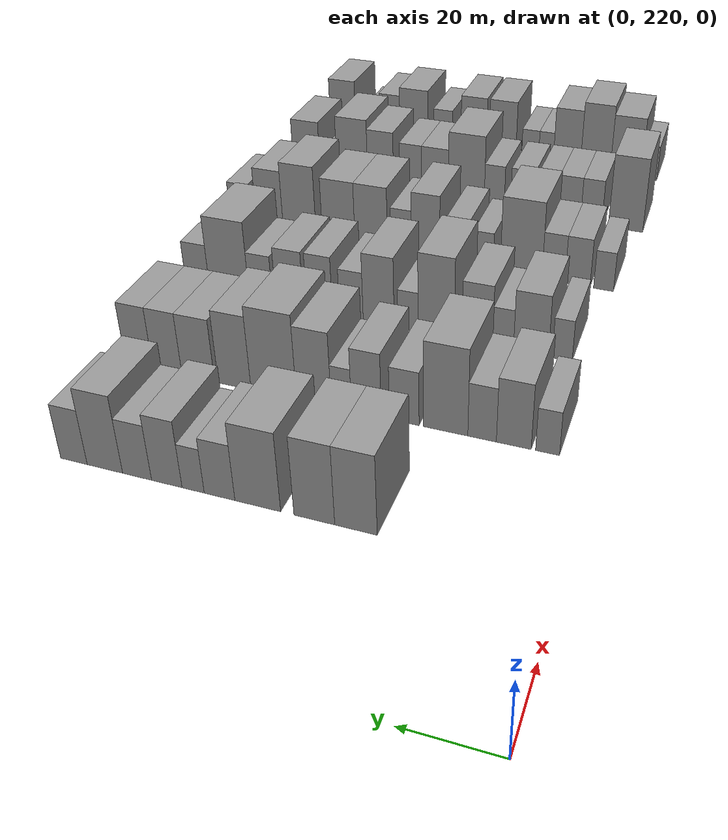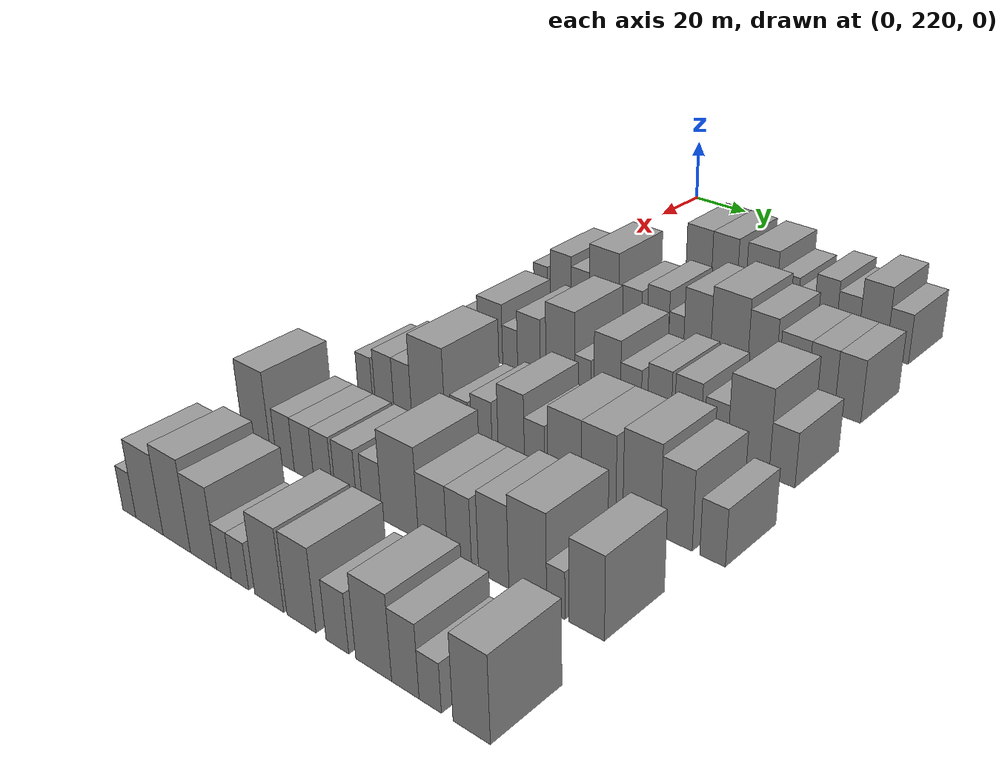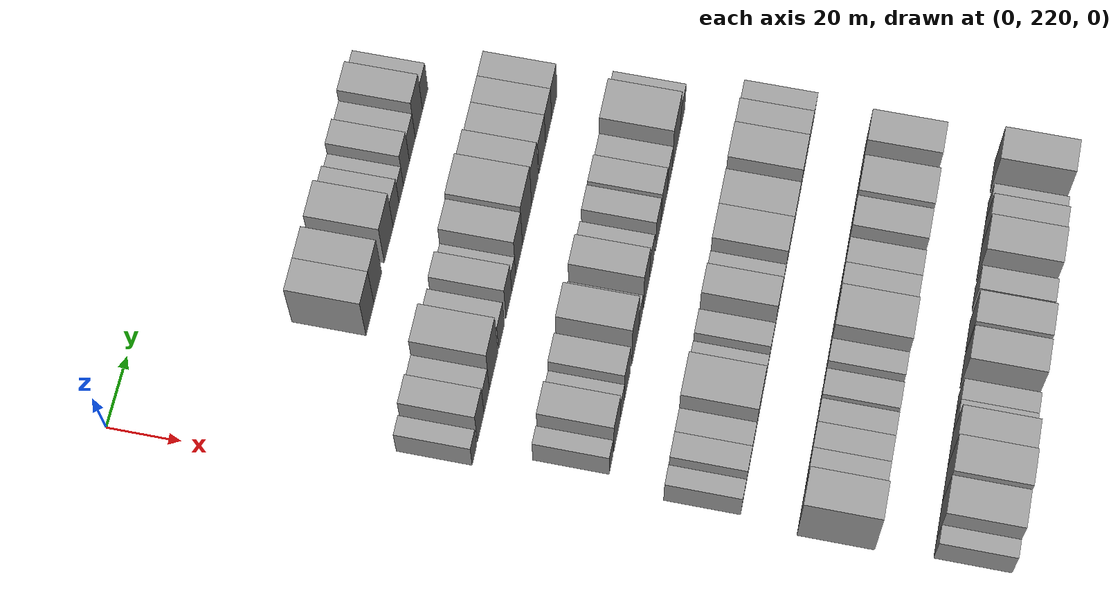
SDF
<sdf version="1.6">
 <world name="default">
  <model name="building_86">
   <static>1</static>
   <pose>50.0000 262.5897 0 0.000000 0.000000 0.000000</pose>
   <link name="link">
    <pose>0 0 10.50 0 0 0</pose>
    <collision name="collision"><geometry><box><size>20.0000 9.2409 21.0000</size></box></geometry></collision>
    <visual name="visual">
     <cast_shadows>0</cast_shadows>
     <geometry><box><size>20.0000 9.2409 21.0000</size></box></geometry>
     <material>
      <script>
       <uri>model://grey_wall/materials/scripts</uri>
       <uri>model://grey_wall/materials/textures</uri>
       <name>vrc/grey_wall</name>
      </script>
     </material>
    </visual>
   </link>
  </model>
  <model name="building_87">
   <static>1</static>
   <pose>50.0000 271.7414 0 0.000000 0.000000 0.000000</pose>
   <link name="link">
    <pose>0 0 10.50 0 0 0</pose>
    <collision name="collision"><geometry><box><size>20.0000 9.0625 21.0000</size></box></geometry></collision>
    <visual name="visual">
     <cast_shadows>0</cast_shadows>
     <geometry><box><size>20.0000 9.0625 21.0000</size></box></geometry>
     <material>
      <script>
       <uri>model://grey_wall/materials/scripts</uri>
       <uri>model://grey_wall/materials/textures</uri>
       <name>vrc/grey_wall</name>
      </script>
     </material>
    </visual>
   </link>
  </model>
  <model name="building_88">
   <static>1</static>
   <pose>50.0000 284.5106 0 0.000000 0.000000 0.000000</pose>
   <link name="link">
    <pose>0 0 10.50 0 0 0</pose>
    <collision name="collision"><geometry><box><size>20.0000 10.4759 21.0000</size></box></geometry></collision>
    <visual name="visual">
     <cast_shadows>0</cast_shadows>
     <geometry><box><size>20.0000 10.4759 21.0000</size></box></geometry>
     <material>
      <script>
       <uri>model://grey_wall/materials/scripts</uri>
       <uri>model://grey_wall/materials/textures</uri>
       <name>vrc/grey_wall</name>
      </script>
     </material>
    </visual>
   </link>
  </model>
  <model name="building_89">
   <static>1</static>
   <pose>50.0000 293.3329 0 0.000000 0.000000 0.000000</pose>
   <link name="link">
    <pose>0 0 7.50 0 0 0</pose>
    <collision name="collision"><geometry><box><size>20.0000 7.1687 15.0000</size></box></geometry></collision>
    <visual name="visual">
     <cast_shadows>0</cast_shadows>
     <geometry><box><size>20.0000 7.1687 15.0000</size></box></geometry>
     <material>
      <script>
       <uri>model://grey_wall/materials/scripts</uri>
       <uri>model://grey_wall/materials/textures</uri>
       <name>vrc/grey_wall</name>
      </script>
     </material>
    </visual>
   </link>
  </model>
  <model name="building_90">
   <static>1</static>
   <pose>50.0000 299.5452 0 0.000000 0.000000 0.000000</pose>
   <link name="link">
    <pose>0 0 6.00 0 0 0</pose>
    <collision name="collision"><geometry><box><size>20.0000 5.2559 12.0000</size></box></geometry></collision>
    <visual name="visual">
     <cast_shadows>0</cast_shadows>
     <geometry><box><size>20.0000 5.2559 12.0000</size></box></geometry>
     <material>
      <script>
       <uri>model://grey_wall/materials/scripts</uri>
       <uri>model://grey_wall/materials/textures</uri>
       <name>vrc/grey_wall</name>
      </script>
     </material>
    </visual>
   </link>
  </model>
  <model name="building_91">
   <static>1</static>
   <pose>50.0000 305.8410 0 0.000000 0.000000 0.000000</pose>
   <link name="link">
    <pose>0 0 9.00 0 0 0</pose>
    <collision name="collision"><geometry><box><size>20.0000 7.3357 18.0000</size></box></geometry></collision>
    <visual name="visual">
     <cast_shadows>0</cast_shadows>
     <geometry><box><size>20.0000 7.3357 18.0000</size></box></geometry>
     <material>
      <script>
       <uri>model://grey_wall/materials/scripts</uri>
       <uri>model://grey_wall/materials/textures</uri>
       <name>vrc/grey_wall</name>
      </script>
     </material>
    </visual>
   </link>
  </model>
  <model name="building_92">
   <static>1</static>
   <pose>50.0000 313.0555 0 0.000000 0.000000 0.000000</pose>
   <link name="link">
    <pose>0 0 7.50 0 0 0</pose>
    <collision name="collision"><geometry><box><size>20.0000 7.0933 15.0000</size></box></geometry></collision>
    <visual name="visual">
     <cast_shadows>0</cast_shadows>
     <geometry><box><size>20.0000 7.0933 15.0000</size></box></geometry>
     <material>
      <script>
       <uri>model://grey_wall/materials/scripts</uri>
       <uri>model://grey_wall/materials/textures</uri>
       <name>vrc/grey_wall</name>
      </script>
     </material>
    </visual>
   </link>
  </model>
  <model name="building_93">
   <static>1</static>
   <pose>50.0000 321.0074 0 0.000000 0.000000 0.000000</pose>
   <link name="link">
    <pose>0 0 10.50 0 0 0</pose>
    <collision name="collision"><geometry><box><size>20.0000 8.8105 21.0000</size></box></geometry></collision>
    <visual name="visual">
     <cast_shadows>0</cast_shadows>
     <geometry><box><size>20.0000 8.8105 21.0000</size></box></geometry>
     <material>
      <script>
       <uri>model://grey_wall/materials/scripts</uri>
       <uri>model://grey_wall/materials/textures</uri>
       <name>vrc/grey_wall</name>
      </script>
     </material>
    </visual>
   </link>
  </model>
  <model name="building_94">
   <static>1</static>
   <pose>50.0000 328.7657 0 0.000000 0.000000 0.000000</pose>
   <link name="link">
    <pose>0 0 7.50 0 0 0</pose>
    <collision name="collision"><geometry><box><size>20.0000 6.7059 15.0000</size></box></geometry></collision>
    <visual name="visual">
     <cast_shadows>0</cast_shadows>
     <geometry><box><size>20.0000 6.7059 15.0000</size></box></geometry>
     <material>
      <script>
       <uri>model://grey_wall/materials/scripts</uri>
       <uri>model://grey_wall/materials/textures</uri>
       <name>vrc/grey_wall</name>
      </script>
     </material>
    </visual>
   </link>
  </model>
  <model name="building_206">
   <static>1</static>
   <pose>85.0000 230.8549 0 0.000000 0.000000 0.000000</pose>
   <link name="link">
    <pose>0 0 6.00 0 0 0</pose>
    <collision name="collision"><geometry><box><size>20.0000 5.4168 12.0000</size></box></geometry></collision>
    <visual name="visual">
     <cast_shadows>0</cast_shadows>
     <geometry><box><size>20.0000 5.4168 12.0000</size></box></geometry>
     <material>
      <script>
       <uri>model://grey_wall/materials/scripts</uri>
       <uri>model://grey_wall/materials/textures</uri>
       <name>vrc/grey_wall</name>
      </script>
     </material>
    </visual>
   </link>
  </model>
  <model name="building_207">
   <static>1</static>
   <pose>85.0000 238.5603 0 0.000000 0.000000 0.000000</pose>
   <link name="link">
    <pose>0 0 9.00 0 0 0</pose>
    <collision name="collision"><geometry><box><size>20.0000 7.9939 18.0000</size></box></geometry></collision>
    <visual name="visual">
     <cast_shadows>0</cast_shadows>
     <geometry><box><size>20.0000 7.9939 18.0000</size></box></geometry>
     <material>
      <script>
       <uri>model://grey_wall/materials/scripts</uri>
       <uri>model://grey_wall/materials/textures</uri>
       <name>vrc/grey_wall</name>
      </script>
     </material>
    </visual>
   </link>
  </model>
  <model name="building_208">
   <static>1</static>
   <pose>85.0000 245.8861 0 0.000000 0.000000 0.000000</pose>
   <link name="link">
    <pose>0 0 7.50 0 0 0</pose>
    <collision name="collision"><geometry><box><size>20.0000 6.6578 15.0000</size></box></geometry></collision>
    <visual name="visual">
     <cast_shadows>0</cast_shadows>
     <geometry><box><size>20.0000 6.6578 15.0000</size></box></geometry>
     <material>
      <script>
       <uri>model://grey_wall/materials/scripts</uri>
       <uri>model://grey_wall/materials/textures</uri>
       <name>vrc/grey_wall</name>
      </script>
     </material>
    </visual>
   </link>
  </model>
  <model name="building_209">
   <static>1</static>
   <pose>85.0000 254.5081 0 0.000000 0.000000 0.000000</pose>
   <link name="link">
    <pose>0 0 12.00 0 0 0</pose>
    <collision name="collision"><geometry><box><size>20.0000 10.5862 24.0000</size></box></geometry></collision>
    <visual name="visual">
     <cast_shadows>0</cast_shadows>
     <geometry><box><size>20.0000 10.5862 24.0000</size></box></geometry>
     <material>
      <script>
       <uri>model://grey_wall/materials/scripts</uri>
       <uri>model://grey_wall/materials/textures</uri>
       <name>vrc/grey_wall</name>
      </script>
     </material>
    </visual>
   </link>
  </model>
  <model name="building_210">
   <static>1</static>
   <pose>85.0000 264.3856 0 0.000000 0.000000 0.000000</pose>
   <link name="link">
    <pose>0 0 7.50 0 0 0</pose>
    <collision name="collision"><geometry><box><size>20.0000 7.1688 15.0000</size></box></geometry></collision>
    <visual name="visual">
     <cast_shadows>0</cast_shadows>
     <geometry><box><size>20.0000 7.1688 15.0000</size></box></geometry>
     <material>
      <script>
       <uri>model://grey_wall/materials/scripts</uri>
       <uri>model://grey_wall/materials/textures</uri>
       <name>vrc/grey_wall</name>
      </script>
     </material>
    </visual>
   </link>
  </model>
  <model name="building_211">
   <static>1</static>
   <pose>85.0000 273.6689 0 0.000000 0.000000 0.000000</pose>
   <link name="link">
    <pose>0 0 9.00 0 0 0</pose>
    <collision name="collision"><geometry><box><size>20.0000 7.3978 18.0000</size></box></geometry></collision>
    <visual name="visual">
     <cast_shadows>0</cast_shadows>
     <geometry><box><size>20.0000 7.3978 18.0000</size></box></geometry>
     <material>
      <script>
       <uri>model://grey_wall/materials/scripts</uri>
       <uri>model://grey_wall/materials/textures</uri>
       <name>vrc/grey_wall</name>
      </script>
     </material>
    </visual>
   </link>
  </model>
  <model name="building_212">
   <static>1</static>
   <pose>85.0000 279.8875 0 0.000000 0.000000 0.000000</pose>
   <link name="link">
    <pose>0 0 6.00 0 0 0</pose>
    <collision name="collision"><geometry><box><size>20.0000 5.0394 12.0000</size></box></geometry></collision>
    <visual name="visual">
     <cast_shadows>0</cast_shadows>
     <geometry><box><size>20.0000 5.0394 12.0000</size></box></geometry>
     <material>
      <script>
       <uri>model://grey_wall/materials/scripts</uri>
       <uri>model://grey_wall/materials/textures</uri>
       <name>vrc/grey_wall</name>
      </script>
     </material>
    </visual>
   </link>
  </model>
  <model name="building_213">
   <static>1</static>
   <pose>85.0000 286.8312 0 0.000000 0.000000 0.000000</pose>
   <link name="link">
    <pose>0 0 10.50 0 0 0</pose>
    <collision name="collision"><geometry><box><size>20.0000 8.8480 21.0000</size></box></geometry></collision>
    <visual name="visual">
     <cast_shadows>0</cast_shadows>
     <geometry><box><size>20.0000 8.8480 21.0000</size></box></geometry>
     <material>
      <script>
       <uri>model://grey_wall/materials/scripts</uri>
       <uri>model://grey_wall/materials/textures</uri>
       <name>vrc/grey_wall</name>
      </script>
     </material>
    </visual>
   </link>
  </model>
  <model name="building_214">
   <static>1</static>
   <pose>85.0000 297.1710 0 0.000000 0.000000 0.000000</pose>
   <link name="link">
    <pose>0 0 12.00 0 0 0</pose>
    <collision name="collision"><geometry><box><size>20.0000 11.8317 24.0000</size></box></geometry></collision>
    <visual name="visual">
     <cast_shadows>0</cast_shadows>
     <geometry><box><size>20.0000 11.8317 24.0000</size></box></geometry>
     <material>
      <script>
       <uri>model://grey_wall/materials/scripts</uri>
       <uri>model://grey_wall/materials/textures</uri>
       <name>vrc/grey_wall</name>
      </script>
     </material>
    </visual>
   </link>
  </model>
  <model name="building_215">
   <static>1</static>
   <pose>85.0000 307.4220 0 0.000000 0.000000 0.000000</pose>
   <link name="link">
    <pose>0 0 10.50 0 0 0</pose>
    <collision name="collision"><geometry><box><size>20.0000 8.6702 21.0000</size></box></geometry></collision>
    <visual name="visual">
     <cast_shadows>0</cast_shadows>
     <geometry><box><size>20.0000 8.6702 21.0000</size></box></geometry>
     <material>
      <script>
       <uri>model://grey_wall/materials/scripts</uri>
       <uri>model://grey_wall/materials/textures</uri>
       <name>vrc/grey_wall</name>
      </script>
     </material>
    </visual>
   </link>
  </model>
  <model name="building_216">
   <static>1</static>
   <pose>85.0000 317.1791 0 0.000000 0.000000 0.000000</pose>
   <link name="link">
    <pose>0 0 9.00 0 0 0</pose>
    <collision name="collision"><geometry><box><size>20.0000 8.8438 18.0000</size></box></geometry></collision>
    <visual name="visual">
     <cast_shadows>0</cast_shadows>
     <geometry><box><size>20.0000 8.8438 18.0000</size></box></geometry>
     <material>
      <script>
       <uri>model://grey_wall/materials/scripts</uri>
       <uri>model://grey_wall/materials/textures</uri>
       <name>vrc/grey_wall</name>
      </script>
     </material>
    </visual>
   </link>
  </model>
  <model name="building_217">
   <static>1</static>
   <pose>85.0000 325.6056 0 0.000000 0.000000 0.000000</pose>
   <link name="link">
    <pose>0 0 9.00 0 0 0</pose>
    <collision name="collision"><geometry><box><size>20.0000 8.0092 18.0000</size></box></geometry></collision>
    <visual name="visual">
     <cast_shadows>0</cast_shadows>
     <geometry><box><size>20.0000 8.0092 18.0000</size></box></geometry>
     <material>
      <script>
       <uri>model://grey_wall/materials/scripts</uri>
       <uri>model://grey_wall/materials/textures</uri>
       <name>vrc/grey_wall</name>
      </script>
     </material>
    </visual>
   </link>
  </model>
  <model name="building_218">
   <static>1</static>
   <pose>85.0000 333.3983 0 0.000000 0.000000 0.000000</pose>
   <link name="link">
    <pose>0 0 9.00 0 0 0</pose>
    <collision name="collision"><geometry><box><size>20.0000 7.5762 18.0000</size></box></geometry></collision>
    <visual name="visual">
     <cast_shadows>0</cast_shadows>
     <geometry><box><size>20.0000 7.5762 18.0000</size></box></geometry>
     <material>
      <script>
       <uri>model://grey_wall/materials/scripts</uri>
       <uri>model://grey_wall/materials/textures</uri>
       <name>vrc/grey_wall</name>
      </script>
     </material>
    </visual>
   </link>
  </model>
  <model name="building_327">
   <static>1</static>
   <pose>120.0000 235.0931 0 0.000000 0.000000 0.000000</pose>
   <link name="link">
    <pose>0 0 6.00 0 0 0</pose>
    <collision name="collision"><geometry><box><size>20.0000 5.0191 12.0000</size></box></geometry></collision>
    <visual name="visual">
     <cast_shadows>0</cast_shadows>
     <geometry><box><size>20.0000 5.0191 12.0000</size></box></geometry>
     <material>
      <script>
       <uri>model://grey_wall/materials/scripts</uri>
       <uri>model://grey_wall/materials/textures</uri>
       <name>vrc/grey_wall</name>
      </script>
     </material>
    </visual>
   </link>
  </model>
  <model name="building_328">
   <static>1</static>
   <pose>120.0000 243.0816 0 0.000000 0.000000 0.000000</pose>
   <link name="link">
    <pose>0 0 9.00 0 0 0</pose>
    <collision name="collision"><geometry><box><size>20.0000 8.9579 18.0000</size></box></geometry></collision>
    <visual name="visual">
     <cast_shadows>0</cast_shadows>
     <geometry><box><size>20.0000 8.9579 18.0000</size></box></geometry>
     <material>
      <script>
       <uri>model://grey_wall/materials/scripts</uri>
       <uri>model://grey_wall/materials/textures</uri>
       <name>vrc/grey_wall</name>
      </script>
     </material>
    </visual>
   </link>
  </model>
  <model name="building_329">
   <static>1</static>
   <pose>120.0000 250.2678 0 0.000000 0.000000 0.000000</pose>
   <link name="link">
    <pose>0 0 6.00 0 0 0</pose>
    <collision name="collision"><geometry><box><size>20.0000 5.4145 12.0000</size></box></geometry></collision>
    <visual name="visual">
     <cast_shadows>0</cast_shadows>
     <geometry><box><size>20.0000 5.4145 12.0000</size></box></geometry>
     <material>
      <script>
       <uri>model://grey_wall/materials/scripts</uri>
       <uri>model://grey_wall/materials/textures</uri>
       <name>vrc/grey_wall</name>
      </script>
     </material>
    </visual>
   </link>
  </model>
  <model name="building_330">
   <static>1</static>
   <pose>120.0000 257.0215 0 0.000000 0.000000 0.000000</pose>
   <link name="link">
    <pose>0 0 9.00 0 0 0</pose>
    <collision name="collision"><geometry><box><size>20.0000 8.0928 18.0000</size></box></geometry></collision>
    <visual name="visual">
     <cast_shadows>0</cast_shadows>
     <geometry><box><size>20.0000 8.0928 18.0000</size></box></geometry>
     <material>
      <script>
       <uri>model://grey_wall/materials/scripts</uri>
       <uri>model://grey_wall/materials/textures</uri>
       <name>vrc/grey_wall</name>
      </script>
     </material>
    </visual>
   </link>
  </model>
  <model name="building_331">
   <static>1</static>
   <pose>120.0000 267.9369 0 0.000000 0.000000 0.000000</pose>
   <link name="link">
    <pose>0 0 12.00 0 0 0</pose>
    <collision name="collision"><geometry><box><size>20.0000 9.7380 24.0000</size></box></geometry></collision>
    <visual name="visual">
     <cast_shadows>0</cast_shadows>
     <geometry><box><size>20.0000 9.7380 24.0000</size></box></geometry>
     <material>
      <script>
       <uri>model://grey_wall/materials/scripts</uri>
       <uri>model://grey_wall/materials/textures</uri>
       <name>vrc/grey_wall</name>
      </script>
     </material>
    </visual>
   </link>
  </model>
  <model name="building_332">
   <static>1</static>
   <pose>120.0000 275.5566 0 0.000000 0.000000 0.000000</pose>
   <link name="link">
    <pose>0 0 6.00 0 0 0</pose>
    <collision name="collision"><geometry><box><size>20.0000 5.5013 12.0000</size></box></geometry></collision>
    <visual name="visual">
     <cast_shadows>0</cast_shadows>
     <geometry><box><size>20.0000 5.5013 12.0000</size></box></geometry>
     <material>
      <script>
       <uri>model://grey_wall/materials/scripts</uri>
       <uri>model://grey_wall/materials/textures</uri>
       <name>vrc/grey_wall</name>
      </script>
     </material>
    </visual>
   </link>
  </model>
  <model name="building_333">
   <static>1</static>
   <pose>120.0000 283.5938 0 0.000000 0.000000 0.000000</pose>
   <link name="link">
    <pose>0 0 10.50 0 0 0</pose>
    <collision name="collision"><geometry><box><size>20.0000 8.5732 21.0000</size></box></geometry></collision>
    <visual name="visual">
     <cast_shadows>0</cast_shadows>
     <geometry><box><size>20.0000 8.5732 21.0000</size></box></geometry>
     <material>
      <script>
       <uri>model://grey_wall/materials/scripts</uri>
       <uri>model://grey_wall/materials/textures</uri>
       <name>vrc/grey_wall</name>
      </script>
     </material>
    </visual>
   </link>
  </model>
  <model name="building_334">
   <static>1</static>
   <pose>120.0000 291.1800 0 0.000000 0.000000 0.000000</pose>
   <link name="link">
    <pose>0 0 7.50 0 0 0</pose>
    <collision name="collision"><geometry><box><size>20.0000 6.5993 15.0000</size></box></geometry></collision>
    <visual name="visual">
     <cast_shadows>0</cast_shadows>
     <geometry><box><size>20.0000 6.5993 15.0000</size></box></geometry>
     <material>
      <script>
       <uri>model://grey_wall/materials/scripts</uri>
       <uri>model://grey_wall/materials/textures</uri>
       <name>vrc/grey_wall</name>
      </script>
     </material>
    </visual>
   </link>
  </model>
  <model name="building_335">
   <static>1</static>
   <pose>120.0000 300.1126 0 0.000000 0.000000 0.000000</pose>
   <link name="link">
    <pose>0 0 9.00 0 0 0</pose>
    <collision name="collision"><geometry><box><size>20.0000 7.2658 18.0000</size></box></geometry></collision>
    <visual name="visual">
     <cast_shadows>0</cast_shadows>
     <geometry><box><size>20.0000 7.2658 18.0000</size></box></geometry>
     <material>
      <script>
       <uri>model://grey_wall/materials/scripts</uri>
       <uri>model://grey_wall/materials/textures</uri>
       <name>vrc/grey_wall</name>
      </script>
     </material>
    </visual>
   </link>
  </model>
  <model name="building_336">
   <static>1</static>
   <pose>120.0000 308.7282 0 0.000000 0.000000 0.000000</pose>
   <link name="link">
    <pose>0 0 9.00 0 0 0</pose>
    <collision name="collision"><geometry><box><size>20.0000 7.9654 18.0000</size></box></geometry></collision>
    <visual name="visual">
     <cast_shadows>0</cast_shadows>
     <geometry><box><size>20.0000 7.9654 18.0000</size></box></geometry>
     <material>
      <script>
       <uri>model://grey_wall/materials/scripts</uri>
       <uri>model://grey_wall/materials/textures</uri>
       <name>vrc/grey_wall</name>
      </script>
     </material>
    </visual>
   </link>
  </model>
  <model name="building_337">
   <static>1</static>
   <pose>120.0000 317.1400 0 0.000000 0.000000 0.000000</pose>
   <link name="link">
    <pose>0 0 7.50 0 0 0</pose>
    <collision name="collision"><geometry><box><size>20.0000 6.8581 15.0000</size></box></geometry></collision>
    <visual name="visual">
     <cast_shadows>0</cast_shadows>
     <geometry><box><size>20.0000 6.8581 15.0000</size></box></geometry>
     <material>
      <script>
       <uri>model://grey_wall/materials/scripts</uri>
       <uri>model://grey_wall/materials/textures</uri>
       <name>vrc/grey_wall</name>
      </script>
     </material>
    </visual>
   </link>
  </model>
  <model name="building_338">
   <static>1</static>
   <pose>120.0000 326.4887 0 0.000000 0.000000 0.000000</pose>
   <link name="link">
    <pose>0 0 12.00 0 0 0</pose>
    <collision name="collision"><geometry><box><size>20.0000 11.8393 24.0000</size></box></geometry></collision>
    <visual name="visual">
     <cast_shadows>0</cast_shadows>
     <geometry><box><size>20.0000 11.8393 24.0000</size></box></geometry>
     <material>
      <script>
       <uri>model://grey_wall/materials/scripts</uri>
       <uri>model://grey_wall/materials/textures</uri>
       <name>vrc/grey_wall</name>
      </script>
     </material>
    </visual>
   </link>
  </model>
  <model name="building_339">
   <static>1</static>
   <pose>120.0000 335.9864 0 0.000000 0.000000 0.000000</pose>
   <link name="link">
    <pose>0 0 7.50 0 0 0</pose>
    <collision name="collision"><geometry><box><size>20.0000 7.1561 15.0000</size></box></geometry></collision>
    <visual name="visual">
     <cast_shadows>0</cast_shadows>
     <geometry><box><size>20.0000 7.1561 15.0000</size></box></geometry>
     <material>
      <script>
       <uri>model://grey_wall/materials/scripts</uri>
       <uri>model://grey_wall/materials/textures</uri>
       <name>vrc/grey_wall</name>
      </script>
     </material>
    </visual>
   </link>
  </model>
  <model name="building_450">
   <static>1</static>
   <pose>155.0000 231.1476 0 0.000000 0.000000 0.000000</pose>
   <link name="link">
    <pose>0 0 6.00 0 0 0</pose>
    <collision name="collision"><geometry><box><size>20.0000 5.4724 12.0000</size></box></geometry></collision>
    <visual name="visual">
     <cast_shadows>0</cast_shadows>
     <geometry><box><size>20.0000 5.4724 12.0000</size></box></geometry>
     <material>
      <script>
       <uri>model://grey_wall/materials/scripts</uri>
       <uri>model://grey_wall/materials/textures</uri>
       <name>vrc/grey_wall</name>
      </script>
     </material>
    </visual>
   </link>
  </model>
  <model name="building_451">
   <static>1</static>
   <pose>155.0000 238.3718 0 0.000000 0.000000 0.000000</pose>
   <link name="link">
    <pose>0 0 7.50 0 0 0</pose>
    <collision name="collision"><geometry><box><size>20.0000 6.9761 15.0000</size></box></geometry></collision>
    <visual name="visual">
     <cast_shadows>0</cast_shadows>
     <geometry><box><size>20.0000 6.9761 15.0000</size></box></geometry>
     <material>
      <script>
       <uri>model://grey_wall/materials/scripts</uri>
       <uri>model://grey_wall/materials/textures</uri>
       <name>vrc/grey_wall</name>
      </script>
     </material>
    </visual>
   </link>
  </model>
  <model name="building_452">
   <static>1</static>
   <pose>155.0000 245.1079 0 0.000000 0.000000 0.000000</pose>
   <link name="link">
    <pose>0 0 7.50 0 0 0</pose>
    <collision name="collision"><geometry><box><size>20.0000 6.4960 15.0000</size></box></geometry></collision>
    <visual name="visual">
     <cast_shadows>0</cast_shadows>
     <geometry><box><size>20.0000 6.4960 15.0000</size></box></geometry>
     <material>
      <script>
       <uri>model://grey_wall/materials/scripts</uri>
       <uri>model://grey_wall/materials/textures</uri>
       <name>vrc/grey_wall</name>
      </script>
     </material>
    </visual>
   </link>
  </model>
  <model name="building_453">
   <static>1</static>
   <pose>155.0000 254.3378 0 0.000000 0.000000 0.000000</pose>
   <link name="link">
    <pose>0 0 12.00 0 0 0</pose>
    <collision name="collision"><geometry><box><size>20.0000 11.9639 24.0000</size></box></geometry></collision>
    <visual name="visual">
     <cast_shadows>0</cast_shadows>
     <geometry><box><size>20.0000 11.9639 24.0000</size></box></geometry>
     <material>
      <script>
       <uri>model://grey_wall/materials/scripts</uri>
       <uri>model://grey_wall/materials/textures</uri>
       <name>vrc/grey_wall</name>
      </script>
     </material>
    </visual>
   </link>
  </model>
  <model name="building_454">
   <static>1</static>
   <pose>155.0000 265.3099 0 0.000000 0.000000 0.000000</pose>
   <link name="link">
    <pose>0 0 6.00 0 0 0</pose>
    <collision name="collision"><geometry><box><size>20.0000 5.9802 12.0000</size></box></geometry></collision>
    <visual name="visual">
     <cast_shadows>0</cast_shadows>
     <geometry><box><size>20.0000 5.9802 12.0000</size></box></geometry>
     <material>
      <script>
       <uri>model://grey_wall/materials/scripts</uri>
       <uri>model://grey_wall/materials/textures</uri>
       <name>vrc/grey_wall</name>
      </script>
     </material>
    </visual>
   </link>
  </model>
  <model name="building_455">
   <static>1</static>
   <pose>155.0000 272.7102 0 0.000000 0.000000 0.000000</pose>
   <link name="link">
    <pose>0 0 7.50 0 0 0</pose>
    <collision name="collision"><geometry><box><size>20.0000 6.8204 15.0000</size></box></geometry></collision>
    <visual name="visual">
     <cast_shadows>0</cast_shadows>
     <geometry><box><size>20.0000 6.8204 15.0000</size></box></geometry>
     <material>
      <script>
       <uri>model://grey_wall/materials/scripts</uri>
       <uri>model://grey_wall/materials/textures</uri>
       <name>vrc/grey_wall</name>
      </script>
     </material>
    </visual>
   </link>
  </model>
  <model name="building_456">
   <static>1</static>
   <pose>155.0000 282.3299 0 0.000000 0.000000 0.000000</pose>
   <link name="link">
    <pose>0 0 10.50 0 0 0</pose>
    <collision name="collision"><geometry><box><size>20.0000 8.4191 21.0000</size></box></geometry></collision>
    <visual name="visual">
     <cast_shadows>0</cast_shadows>
     <geometry><box><size>20.0000 8.4191 21.0000</size></box></geometry>
     <material>
      <script>
       <uri>model://grey_wall/materials/scripts</uri>
       <uri>model://grey_wall/materials/textures</uri>
       <name>vrc/grey_wall</name>
      </script>
     </material>
    </visual>
   </link>
  </model>
  <model name="building_457">
   <static>1</static>
   <pose>155.0000 289.6793 0 0.000000 0.000000 0.000000</pose>
   <link name="link">
    <pose>0 0 7.50 0 0 0</pose>
    <collision name="collision"><geometry><box><size>20.0000 6.2796 15.0000</size></box></geometry></collision>
    <visual name="visual">
     <cast_shadows>0</cast_shadows>
     <geometry><box><size>20.0000 6.2796 15.0000</size></box></geometry>
     <material>
      <script>
       <uri>model://grey_wall/materials/scripts</uri>
       <uri>model://grey_wall/materials/textures</uri>
       <name>vrc/grey_wall</name>
      </script>
     </material>
    </visual>
   </link>
  </model>
  <model name="building_458">
   <static>1</static>
   <pose>155.0000 298.8348 0 0.000000 0.000000 0.000000</pose>
   <link name="link">
    <pose>0 0 10.50 0 0 0</pose>
    <collision name="collision"><geometry><box><size>20.0000 10.0314 21.0000</size></box></geometry></collision>
    <visual name="visual">
     <cast_shadows>0</cast_shadows>
     <geometry><box><size>20.0000 10.0314 21.0000</size></box></geometry>
     <material>
      <script>
       <uri>model://grey_wall/materials/scripts</uri>
       <uri>model://grey_wall/materials/textures</uri>
       <name>vrc/grey_wall</name>
      </script>
     </material>
    </visual>
   </link>
  </model>
  <model name="building_459">
   <static>1</static>
   <pose>155.0000 308.9380 0 0.000000 0.000000 0.000000</pose>
   <link name="link">
    <pose>0 0 10.50 0 0 0</pose>
    <collision name="collision"><geometry><box><size>20.0000 10.1752 21.0000</size></box></geometry></collision>
    <visual name="visual">
     <cast_shadows>0</cast_shadows>
     <geometry><box><size>20.0000 10.1752 21.0000</size></box></geometry>
     <material>
      <script>
       <uri>model://grey_wall/materials/scripts</uri>
       <uri>model://grey_wall/materials/textures</uri>
       <name>vrc/grey_wall</name>
      </script>
     </material>
    </visual>
   </link>
  </model>
  <model name="building_460">
   <static>1</static>
   <pose>155.0000 321.2710 0 0.000000 0.000000 0.000000</pose>
   <link name="link">
    <pose>0 0 12.00 0 0 0</pose>
    <collision name="collision"><geometry><box><size>20.0000 10.4907 24.0000</size></box></geometry></collision>
    <visual name="visual">
     <cast_shadows>0</cast_shadows>
     <geometry><box><size>20.0000 10.4907 24.0000</size></box></geometry>
     <material>
      <script>
       <uri>model://grey_wall/materials/scripts</uri>
       <uri>model://grey_wall/materials/textures</uri>
       <name>vrc/grey_wall</name>
      </script>
     </material>
    </visual>
   </link>
  </model>
  <model name="building_461">
   <static>1</static>
   <pose>155.0000 330.8384 0 0.000000 0.000000 0.000000</pose>
   <link name="link">
    <pose>0 0 10.50 0 0 0</pose>
    <collision name="collision"><geometry><box><size>20.0000 8.6441 21.0000</size></box></geometry></collision>
    <visual name="visual">
     <cast_shadows>0</cast_shadows>
     <geometry><box><size>20.0000 8.6441 21.0000</size></box></geometry>
     <material>
      <script>
       <uri>model://grey_wall/materials/scripts</uri>
       <uri>model://grey_wall/materials/textures</uri>
       <name>vrc/grey_wall</name>
      </script>
     </material>
    </visual>
   </link>
  </model>
  <model name="building_462">
   <static>1</static>
   <pose>155.0000 340.5013 0 0.000000 0.000000 0.000000</pose>
   <link name="link">
    <pose>0 0 7.50 0 0 0</pose>
    <collision name="collision"><geometry><box><size>20.0000 6.6818 15.0000</size></box></geometry></collision>
    <visual name="visual">
     <cast_shadows>0</cast_shadows>
     <geometry><box><size>20.0000 6.6818 15.0000</size></box></geometry>
     <material>
      <script>
       <uri>model://grey_wall/materials/scripts</uri>
       <uri>model://grey_wall/materials/textures</uri>
       <name>vrc/grey_wall</name>
      </script>
     </material>
    </visual>
   </link>
  </model>
  <model name="building_578">
   <static>1</static>
   <pose>190.0000 230.9246 0 0.000000 0.000000 0.000000</pose>
   <link name="link">
    <pose>0 0 12.00 0 0 0</pose>
    <collision name="collision"><geometry><box><size>20.0000 10.3011 24.0000</size></box></geometry></collision>
    <visual name="visual">
     <cast_shadows>0</cast_shadows>
     <geometry><box><size>20.0000 10.3011 24.0000</size></box></geometry>
     <material>
      <script>
       <uri>model://grey_wall/materials/scripts</uri>
       <uri>model://grey_wall/materials/textures</uri>
       <name>vrc/grey_wall</name>
      </script>
     </material>
    </visual>
   </link>
  </model>
  <model name="building_579">
   <static>1</static>
   <pose>190.0000 241.3185 0 0.000000 0.000000 0.000000</pose>
   <link name="link">
    <pose>0 0 7.50 0 0 0</pose>
    <collision name="collision"><geometry><box><size>20.0000 6.4867 15.0000</size></box></geometry></collision>
    <visual name="visual">
     <cast_shadows>0</cast_shadows>
     <geometry><box><size>20.0000 6.4867 15.0000</size></box></geometry>
     <material>
      <script>
       <uri>model://grey_wall/materials/scripts</uri>
       <uri>model://grey_wall/materials/textures</uri>
       <name>vrc/grey_wall</name>
      </script>
     </material>
    </visual>
   </link>
  </model>
  <model name="building_580">
   <static>1</static>
   <pose>190.0000 248.0989 0 0.000000 0.000000 0.000000</pose>
   <link name="link">
    <pose>0 0 7.50 0 0 0</pose>
    <collision name="collision"><geometry><box><size>20.0000 7.0741 15.0000</size></box></geometry></collision>
    <visual name="visual">
     <cast_shadows>0</cast_shadows>
     <geometry><box><size>20.0000 7.0741 15.0000</size></box></geometry>
     <material>
      <script>
       <uri>model://grey_wall/materials/scripts</uri>
       <uri>model://grey_wall/materials/textures</uri>
       <name>vrc/grey_wall</name>
      </script>
     </material>
    </visual>
   </link>
  </model>
  <model name="building_581">
   <static>1</static>
   <pose>190.0000 254.8633 0 0.000000 0.000000 0.000000</pose>
   <link name="link">
    <pose>0 0 7.50 0 0 0</pose>
    <collision name="collision"><geometry><box><size>20.0000 6.4546 15.0000</size></box></geometry></collision>
    <visual name="visual">
     <cast_shadows>0</cast_shadows>
     <geometry><box><size>20.0000 6.4546 15.0000</size></box></geometry>
     <material>
      <script>
       <uri>model://grey_wall/materials/scripts</uri>
       <uri>model://grey_wall/materials/textures</uri>
       <name>vrc/grey_wall</name>
      </script>
     </material>
    </visual>
   </link>
  </model>
  <model name="building_582">
   <static>1</static>
   <pose>190.0000 262.7425 0 0.000000 0.000000 0.000000</pose>
   <link name="link">
    <pose>0 0 7.50 0 0 0</pose>
    <collision name="collision"><geometry><box><size>20.0000 7.3038 15.0000</size></box></geometry></collision>
    <visual name="visual">
     <cast_shadows>0</cast_shadows>
     <geometry><box><size>20.0000 7.3038 15.0000</size></box></geometry>
     <material>
      <script>
       <uri>model://grey_wall/materials/scripts</uri>
       <uri>model://grey_wall/materials/textures</uri>
       <name>vrc/grey_wall</name>
      </script>
     </material>
    </visual>
   </link>
  </model>
  <model name="building_583">
   <static>1</static>
   <pose>190.0000 271.5884 0 0.000000 0.000000 0.000000</pose>
   <link name="link">
    <pose>0 0 7.50 0 0 0</pose>
    <collision name="collision"><geometry><box><size>20.0000 6.3878 15.0000</size></box></geometry></collision>
    <visual name="visual">
     <cast_shadows>0</cast_shadows>
     <geometry><box><size>20.0000 6.3878 15.0000</size></box></geometry>
     <material>
      <script>
       <uri>model://grey_wall/materials/scripts</uri>
       <uri>model://grey_wall/materials/textures</uri>
       <name>vrc/grey_wall</name>
      </script>
     </material>
    </visual>
   </link>
  </model>
  <model name="building_584">
   <static>1</static>
   <pose>190.0000 280.5796 0 0.000000 0.000000 0.000000</pose>
   <link name="link">
    <pose>0 0 12.00 0 0 0</pose>
    <collision name="collision"><geometry><box><size>20.0000 11.5947 24.0000</size></box></geometry></collision>
    <visual name="visual">
     <cast_shadows>0</cast_shadows>
     <geometry><box><size>20.0000 11.5947 24.0000</size></box></geometry>
     <material>
      <script>
       <uri>model://grey_wall/materials/scripts</uri>
       <uri>model://grey_wall/materials/textures</uri>
       <name>vrc/grey_wall</name>
      </script>
     </material>
    </visual>
   </link>
  </model>
  <model name="building_585">
   <static>1</static>
   <pose>190.0000 290.7981 0 0.000000 0.000000 0.000000</pose>
   <link name="link">
    <pose>0 0 9.00 0 0 0</pose>
    <collision name="collision"><geometry><box><size>20.0000 8.8424 18.0000</size></box></geometry></collision>
    <visual name="visual">
     <cast_shadows>0</cast_shadows>
     <geometry><box><size>20.0000 8.8424 18.0000</size></box></geometry>
     <material>
      <script>
       <uri>model://grey_wall/materials/scripts</uri>
       <uri>model://grey_wall/materials/textures</uri>
       <name>vrc/grey_wall</name>
      </script>
     </material>
    </visual>
   </link>
  </model>
  <model name="building_586">
   <static>1</static>
   <pose>190.0000 298.8443 0 0.000000 0.000000 0.000000</pose>
   <link name="link">
    <pose>0 0 9.00 0 0 0</pose>
    <collision name="collision"><geometry><box><size>20.0000 7.2499 18.0000</size></box></geometry></collision>
    <visual name="visual">
     <cast_shadows>0</cast_shadows>
     <geometry><box><size>20.0000 7.2499 18.0000</size></box></geometry>
     <material>
      <script>
       <uri>model://grey_wall/materials/scripts</uri>
       <uri>model://grey_wall/materials/textures</uri>
       <name>vrc/grey_wall</name>
      </script>
     </material>
    </visual>
   </link>
  </model>
  <model name="building_587">
   <static>1</static>
   <pose>190.0000 308.8154 0 0.000000 0.000000 0.000000</pose>
   <link name="link">
    <pose>0 0 10.50 0 0 0</pose>
    <collision name="collision"><geometry><box><size>20.0000 8.6923 21.0000</size></box></geometry></collision>
    <visual name="visual">
     <cast_shadows>0</cast_shadows>
     <geometry><box><size>20.0000 8.6923 21.0000</size></box></geometry>
     <material>
      <script>
       <uri>model://grey_wall/materials/scripts</uri>
       <uri>model://grey_wall/materials/textures</uri>
       <name>vrc/grey_wall</name>
      </script>
     </material>
    </visual>
   </link>
  </model>
  <model name="building_588">
   <static>1</static>
   <pose>190.0000 318.3810 0 0.000000 0.000000 0.000000</pose>
   <link name="link">
    <pose>0 0 12.00 0 0 0</pose>
    <collision name="collision"><geometry><box><size>20.0000 10.4390 24.0000</size></box></geometry></collision>
    <visual name="visual">
     <cast_shadows>0</cast_shadows>
     <geometry><box><size>20.0000 10.4390 24.0000</size></box></geometry>
     <material>
      <script>
       <uri>model://grey_wall/materials/scripts</uri>
       <uri>model://grey_wall/materials/textures</uri>
       <name>vrc/grey_wall</name>
      </script>
     </material>
    </visual>
   </link>
  </model>
  <model name="building_589">
   <static>1</static>
   <pose>190.0000 326.0357 0 0.000000 0.000000 0.000000</pose>
   <link name="link">
    <pose>0 0 6.00 0 0 0</pose>
    <collision name="collision"><geometry><box><size>20.0000 4.8705 12.0000</size></box></geometry></collision>
    <visual name="visual">
     <cast_shadows>0</cast_shadows>
     <geometry><box><size>20.0000 4.8705 12.0000</size></box></geometry>
     <material>
      <script>
       <uri>model://grey_wall/materials/scripts</uri>
       <uri>model://grey_wall/materials/textures</uri>
       <name>vrc/grey_wall</name>
      </script>
     </material>
    </visual>
   </link>
  </model>
  <model name="building_590">
   <static>1</static>
   <pose>190.0000 334.0959 0 0.000000 0.000000 0.000000</pose>
   <link name="link">
    <pose>0 0 10.50 0 0 0</pose>
    <collision name="collision"><geometry><box><size>20.0000 9.2498 21.0000</size></box></geometry></collision>
    <visual name="visual">
     <cast_shadows>0</cast_shadows>
     <geometry><box><size>20.0000 9.2498 21.0000</size></box></geometry>
     <material>
      <script>
       <uri>model://grey_wall/materials/scripts</uri>
       <uri>model://grey_wall/materials/textures</uri>
       <name>vrc/grey_wall</name>
      </script>
     </material>
    </visual>
   </link>
  </model>
  <model name="building_709">
   <static>1</static>
   <pose>225.0000 229.0651 0 0.000000 0.000000 0.000000</pose>
   <link name="link">
    <pose>0 0 6.00 0 0 0</pose>
    <collision name="collision"><geometry><box><size>20.0000 5.0414 12.0000</size></box></geometry></collision>
    <visual name="visual">
     <cast_shadows>0</cast_shadows>
     <geometry><box><size>20.0000 5.0414 12.0000</size></box></geometry>
     <material>
      <script>
       <uri>model://grey_wall/materials/scripts</uri>
       <uri>model://grey_wall/materials/textures</uri>
       <name>vrc/grey_wall</name>
      </script>
     </material>
    </visual>
   </link>
  </model>
  <model name="building_710">
   <static>1</static>
   <pose>225.0000 236.6927 0 0.000000 0.000000 0.000000</pose>
   <link name="link">
    <pose>0 0 10.50 0 0 0</pose>
    <collision name="collision"><geometry><box><size>20.0000 10.2138 21.0000</size></box></geometry></collision>
    <visual name="visual">
     <cast_shadows>0</cast_shadows>
     <geometry><box><size>20.0000 10.2138 21.0000</size></box></geometry>
     <material>
      <script>
       <uri>model://grey_wall/materials/scripts</uri>
       <uri>model://grey_wall/materials/textures</uri>
       <name>vrc/grey_wall</name>
      </script>
     </material>
    </visual>
   </link>
  </model>
  <model name="building_711">
   <static>1</static>
   <pose>225.0000 246.7537 0 0.000000 0.000000 0.000000</pose>
   <link name="link">
    <pose>0 0 12.00 0 0 0</pose>
    <collision name="collision"><geometry><box><size>20.0000 9.9081 24.0000</size></box></geometry></collision>
    <visual name="visual">
     <cast_shadows>0</cast_shadows>
     <geometry><box><size>20.0000 9.9081 24.0000</size></box></geometry>
     <material>
      <script>
       <uri>model://grey_wall/materials/scripts</uri>
       <uri>model://grey_wall/materials/textures</uri>
       <name>vrc/grey_wall</name>
      </script>
     </material>
    </visual>
   </link>
  </model>
  <model name="building_712">
   <static>1</static>
   <pose>225.0000 256.2560 0 0.000000 0.000000 0.000000</pose>
   <link name="link">
    <pose>0 0 10.50 0 0 0</pose>
    <collision name="collision"><geometry><box><size>20.0000 9.0964 21.0000</size></box></geometry></collision>
    <visual name="visual">
     <cast_shadows>0</cast_shadows>
     <geometry><box><size>20.0000 9.0964 21.0000</size></box></geometry>
     <material>
      <script>
       <uri>model://grey_wall/materials/scripts</uri>
       <uri>model://grey_wall/materials/textures</uri>
       <name>vrc/grey_wall</name>
      </script>
     </material>
    </visual>
   </link>
  </model>
  <model name="building_713">
   <static>1</static>
   <pose>225.0000 263.3113 0 0.000000 0.000000 0.000000</pose>
   <link name="link">
    <pose>0 0 6.00 0 0 0</pose>
    <collision name="collision"><geometry><box><size>20.0000 5.0143 12.0000</size></box></geometry></collision>
    <visual name="visual">
     <cast_shadows>0</cast_shadows>
     <geometry><box><size>20.0000 5.0143 12.0000</size></box></geometry>
     <material>
      <script>
       <uri>model://grey_wall/materials/scripts</uri>
       <uri>model://grey_wall/materials/textures</uri>
       <name>vrc/grey_wall</name>
      </script>
     </material>
    </visual>
   </link>
  </model>
  <model name="building_714">
   <static>1</static>
   <pose>225.0000 268.7152 0 0.000000 0.000000 0.000000</pose>
   <link name="link">
    <pose>0 0 6.00 0 0 0</pose>
    <collision name="collision"><geometry><box><size>20.0000 5.7935 12.0000</size></box></geometry></collision>
    <visual name="visual">
     <cast_shadows>0</cast_shadows>
     <geometry><box><size>20.0000 5.7935 12.0000</size></box></geometry>
     <material>
      <script>
       <uri>model://grey_wall/materials/scripts</uri>
       <uri>model://grey_wall/materials/textures</uri>
       <name>vrc/grey_wall</name>
      </script>
     </material>
    </visual>
   </link>
  </model>
  <model name="building_715">
   <static>1</static>
   <pose>225.0000 278.2406 0 0.000000 0.000000 0.000000</pose>
   <link name="link">
    <pose>0 0 10.50 0 0 0</pose>
    <collision name="collision"><geometry><box><size>20.0000 9.2573 21.0000</size></box></geometry></collision>
    <visual name="visual">
     <cast_shadows>0</cast_shadows>
     <geometry><box><size>20.0000 9.2573 21.0000</size></box></geometry>
     <material>
      <script>
       <uri>model://grey_wall/materials/scripts</uri>
       <uri>model://grey_wall/materials/textures</uri>
       <name>vrc/grey_wall</name>
      </script>
     </material>
    </visual>
   </link>
  </model>
  <model name="building_716">
   <static>1</static>
   <pose>225.0000 288.3417 0 0.000000 0.000000 0.000000</pose>
   <link name="link">
    <pose>0 0 10.50 0 0 0</pose>
    <collision name="collision"><geometry><box><size>20.0000 8.9449 21.0000</size></box></geometry></collision>
    <visual name="visual">
     <cast_shadows>0</cast_shadows>
     <geometry><box><size>20.0000 8.9449 21.0000</size></box></geometry>
     <material>
      <script>
       <uri>model://grey_wall/materials/scripts</uri>
       <uri>model://grey_wall/materials/textures</uri>
       <name>vrc/grey_wall</name>
      </script>
     </material>
    </visual>
   </link>
  </model>
  <model name="building_717">
   <static>1</static>
   <pose>225.0000 299.1642 0 0.000000 0.000000 0.000000</pose>
   <link name="link">
    <pose>0 0 7.50 0 0 0</pose>
    <collision name="collision"><geometry><box><size>20.0000 6.7000 15.0000</size></box></geometry></collision>
    <visual name="visual">
     <cast_shadows>0</cast_shadows>
     <geometry><box><size>20.0000 6.7000 15.0000</size></box></geometry>
     <material>
      <script>
       <uri>model://grey_wall/materials/scripts</uri>
       <uri>model://grey_wall/materials/textures</uri>
       <name>vrc/grey_wall</name>
      </script>
     </material>
    </visual>
   </link>
  </model>
  <model name="building_718">
   <static>1</static>
   <pose>225.0000 309.5826 0 0.000000 0.000000 0.000000</pose>
   <link name="link">
    <pose>0 0 10.50 0 0 0</pose>
    <collision name="collision"><geometry><box><size>20.0000 10.1369 21.0000</size></box></geometry></collision>
    <visual name="visual">
     <cast_shadows>0</cast_shadows>
     <geometry><box><size>20.0000 10.1369 21.0000</size></box></geometry>
     <material>
      <script>
       <uri>model://grey_wall/materials/scripts</uri>
       <uri>model://grey_wall/materials/textures</uri>
       <name>vrc/grey_wall</name>
      </script>
     </material>
    </visual>
   </link>
  </model>
  <model name="building_719">
   <static>1</static>
   <pose>225.0000 318.3634 0 0.000000 0.000000 0.000000</pose>
   <link name="link">
    <pose>0 0 9.00 0 0 0</pose>
    <collision name="collision"><geometry><box><size>20.0000 7.4247 18.0000</size></box></geometry></collision>
    <visual name="visual">
     <cast_shadows>0</cast_shadows>
     <geometry><box><size>20.0000 7.4247 18.0000</size></box></geometry>
     <material>
      <script>
       <uri>model://grey_wall/materials/scripts</uri>
       <uri>model://grey_wall/materials/textures</uri>
       <name>vrc/grey_wall</name>
      </script>
     </material>
    </visual>
   </link>
  </model>
  <model name="building_720">
   <static>1</static>
   <pose>225.0000 325.0089 0 0.000000 0.000000 0.000000</pose>
   <link name="link">
    <pose>0 0 6.00 0 0 0</pose>
    <collision name="collision"><geometry><box><size>20.0000 5.8665 12.0000</size></box></geometry></collision>
    <visual name="visual">
     <cast_shadows>0</cast_shadows>
     <geometry><box><size>20.0000 5.8665 12.0000</size></box></geometry>
     <material>
      <script>
       <uri>model://grey_wall/materials/scripts</uri>
       <uri>model://grey_wall/materials/textures</uri>
       <name>vrc/grey_wall</name>
      </script>
     </material>
    </visual>
   </link>
  </model>
  <model name="building_721">
   <static>1</static>
   <pose>225.0000 335.6426 0 0.000000 0.000000 0.000000</pose>
   <link name="link">
    <pose>0 0 10.50 0 0 0</pose>
    <collision name="collision"><geometry><box><size>20.0000 9.4009 21.0000</size></box></geometry></collision>
    <visual name="visual">
     <cast_shadows>0</cast_shadows>
     <geometry><box><size>20.0000 9.4009 21.0000</size></box></geometry>
     <material>
      <script>
       <uri>model://grey_wall/materials/scripts</uri>
       <uri>model://grey_wall/materials/textures</uri>
       <name>vrc/grey_wall</name>
      </script>
     </material>
    </visual>
   </link>
  </model>
 </world>
</sdf>
